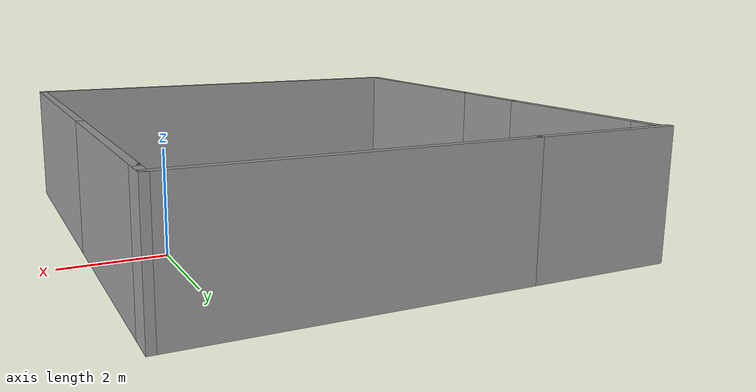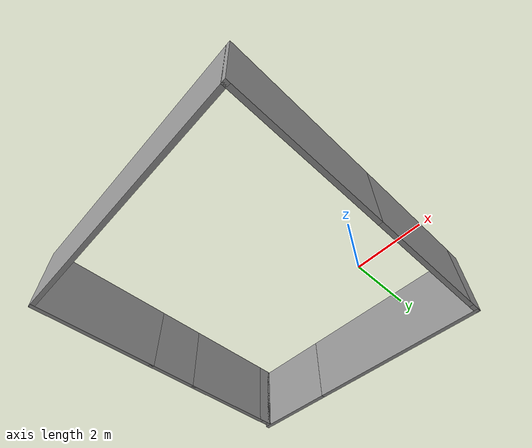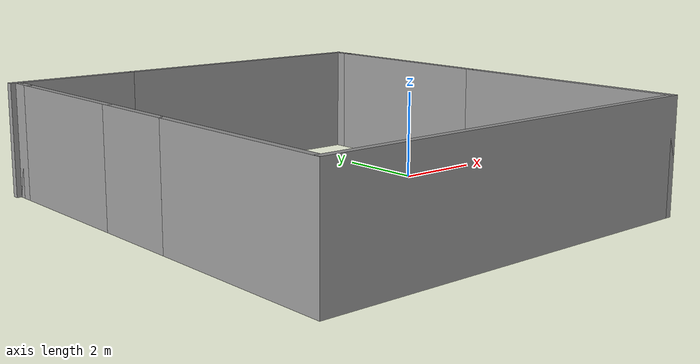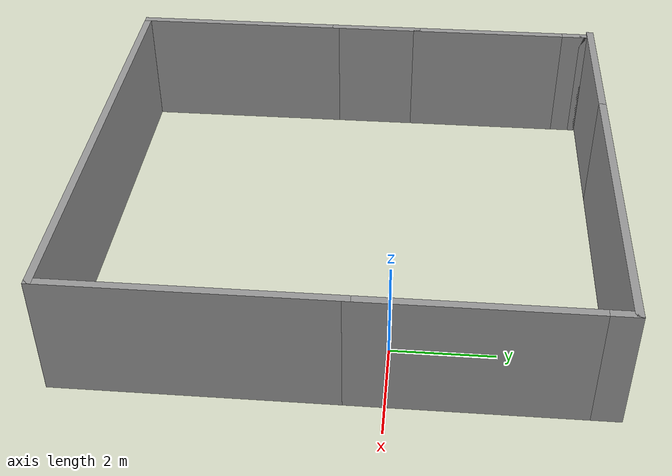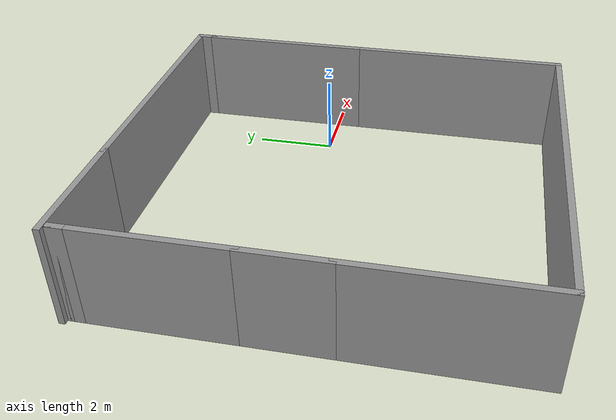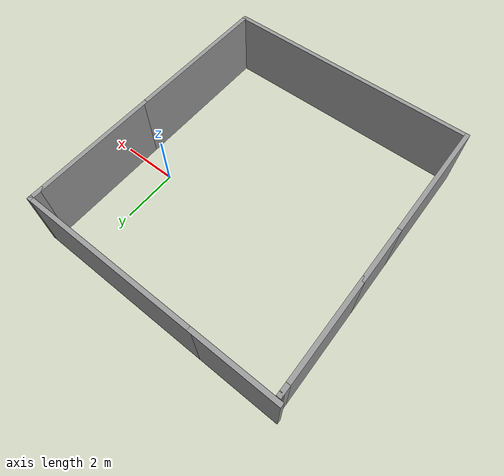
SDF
<?xml version='1.0'?>
<sdf version='1.6'>
  <model name='Walls'>
    <pose frame=''>-3.27461 -0.974878 0 0 -0 0</pose>
    <link name='Wall_106'>
      <collision name='Wall_106_Collision'>
        <geometry>
          <box>
            <size>3 0.15 2.5</size>
          </box>
        </geometry>
        <pose frame=''>0 0 1.25 0 -0 0</pose>
      </collision>
      <visual name='Wall_106_Visual'>
        <pose frame=''>0 0 1.25 0 -0 0</pose>
        <geometry>
          <box>
            <size>3 0.15 2.5</size>
          </box>
        </geometry>
        <material>
          <script>
            <uri>file://media/materials/scripts/gazebo.material</uri>
            <name>Gazebo/Grey</name>
          </script>
          <ambient>1 1 1 1</ambient>
        </material>
      </visual>
      <pose frame=''>-3.18 5.05488 0 0 -0 3.14159</pose>
    </link>
    <link name='Wall_108'>
      <collision name='Wall_108_Collision'>
        <geometry>
          <box>
            <size>2 0.15 2.5</size>
          </box>
        </geometry>
        <pose frame=''>0 0 1.25 0 -0 0</pose>
      </collision>
      <visual name='Wall_108_Visual'>
        <pose frame=''>0 0 1.25 0 -0 0</pose>
        <geometry>
          <box>
            <size>2 0.15 2.5</size>
          </box>
        </geometry>
        <material>
          <script>
            <uri>file://media/materials/scripts/gazebo.material</uri>
            <name>Gazebo/Grey</name>
          </script>
          <ambient>1 1 1 1</ambient>
        </material>
      </visual>
      <pose frame=''>-4.495 0.219878 0 0 -0 1.5708</pose>
    </link>
    <link name='Wall_109'>
      <collision name='Wall_109_Collision'>
        <geometry>
          <box>
            <size>3.5 0.15 2.5</size>
          </box>
        </geometry>
        <pose frame=''>0 0 1.25 0 -0 0</pose>
      </collision>
      <visual name='Wall_109_Visual'>
        <pose frame=''>0 0 1.25 0 -0 0</pose>
        <geometry>
          <box>
            <size>3.5 0.15 2.5</size>
          </box>
        </geometry>
        <material>
          <script>
            <uri>file://media/materials/scripts/gazebo.material</uri>
            <name>Gazebo/Grey</name>
          </script>
          <ambient>1 1 1 1</ambient>
        </material>
      </visual>
      <pose frame=''>-4.495 2.81988 0 0 -0 1.5708</pose>
    </link>
    <link name='Wall_11'>
      <collision name='Wall_11_Collision'>
        <geometry>
          <box>
            <size>0.560488 0.15 2.5</size>
          </box>
        </geometry>
        <pose frame=''>0 0 1.25 0 -0 0</pose>
      </collision>
      <visual name='Wall_11_Visual'>
        <pose frame=''>0 0 1.25 0 -0 0</pose>
        <geometry>
          <box>
            <size>0.560488 0.15 2.5</size>
          </box>
        </geometry>
        <material>
          <script>
            <uri>file://media/materials/scripts/gazebo.material</uri>
            <name>Gazebo/Grey</name>
          </script>
          <ambient>1 1 1 1</ambient>
        </material>
      </visual>
      <pose frame=''>4.605 4.84988 0 0 -0 1.5708</pose>
    </link>
    <link name='Wall_110'>
      <collision name='Wall_110_Collision'>
        <geometry>
          <box>
            <size>0.55 0.15 2.5</size>
          </box>
        </geometry>
        <pose frame=''>0 0 1.25 0 -0 0</pose>
      </collision>
      <visual name='Wall_110_Visual'>
        <pose frame=''>0 0 1.25 0 -0 0</pose>
        <geometry>
          <box>
            <size>0.55 0.15 2.5</size>
          </box>
        </geometry>
        <material>
          <script>
            <uri>file://media/materials/scripts/gazebo.material</uri>
            <name>Gazebo/Grey</name>
          </script>
          <ambient>1 1 1 1</ambient>
        </material>
      </visual>
      <pose frame=''>-4.495 4.69488 0 0 -0 1.5708</pose>
    </link>
    <link name='Wall_12'>
      <collision name='Wall_12_Collision'>
        <geometry>
          <box>
            <size>6.5 0.15 2.5</size>
          </box>
        </geometry>
        <pose frame=''>0 0 1.25 0 -0 0</pose>
      </collision>
      <visual name='Wall_12_Visual'>
        <pose frame=''>0 0 1.25 0 -0 0</pose>
        <geometry>
          <box>
            <size>6.5 0.15 2.5</size>
          </box>
        </geometry>
        <material>
          <script>
            <uri>file://media/materials/scripts/gazebo.material</uri>
            <name>Gazebo/Grey</name>
          </script>
          <ambient>1 1 1 1</ambient>
        </material>
      </visual>
      <pose frame=''>1.42 5.05488 0 0 -0 3.14159</pose>
    </link>
    <link name='Wall_19'>
      <collision name='Wall_19_Collision'>
        <geometry>
          <box>
            <size>0.15 0.15 2.5</size>
          </box>
        </geometry>
        <pose frame=''>0 0 1.25 0 -0 0</pose>
      </collision>
      <visual name='Wall_19_Visual'>
        <pose frame=''>0 0 1.25 0 -0 0</pose>
        <geometry>
          <box>
            <size>0.15 0.15 2.5</size>
          </box>
        </geometry>
        <material>
          <script>
            <uri>file://media/materials/scripts/gazebo.material</uri>
            <name>Gazebo/Grey</name>
          </script>
          <ambient>1 1 1 1</ambient>
        </material>
      </visual>
      <pose frame=''>-4.495 4.89488 0 0 -0 0</pose>
    </link>
    <link name='Wall_2'>
      <collision name='Wall_2_Collision'>
        <geometry>
          <box>
            <size>4.5 0.15 2.5</size>
          </box>
        </geometry>
        <pose frame=''>0 0 1.25 0 -0 0</pose>
      </collision>
      <visual name='Wall_2_Visual'>
        <pose frame=''>0 0 1.25 0 -0 0</pose>
        <geometry>
          <box>
            <size>4.5 0.15 2.5</size>
          </box>
        </geometry>
        <material>
          <script>
            <uri>file://media/materials/scripts/gazebo.material</uri>
            <name>Gazebo/Grey</name>
          </script>
          <ambient>1 1 1 1</ambient>
        </material>
      </visual>
      <pose frame=''>-4.495 -2.88012 0 0 0 -1.5708</pose>
    </link>
    <link name='Wall_3'>
      <collision name='Wall_3_Collision'>
        <geometry>
          <box>
            <size>9.25 0.15 2.5</size>
          </box>
        </geometry>
        <pose frame=''>0 0 1.25 0 -0 0</pose>
      </collision>
      <visual name='Wall_3_Visual'>
        <pose frame=''>0 0 1.25 0 -0 0</pose>
        <geometry>
          <box>
            <size>9.25 0.15 2.5</size>
          </box>
        </geometry>
        <material>
          <script>
            <uri>file://media/materials/scripts/gazebo.material</uri>
            <name>Gazebo/Grey</name>
          </script>
          <ambient>1 1 1 1</ambient>
        </material>
      </visual>
      <pose frame=''>0.055 -5.05512 0 0 -0 0</pose>
    </link>
    <link name='Wall_7'>
      <collision name='Wall_7_Collision'>
        <geometry>
          <box>
            <size>5.5 0.15 2.5</size>
          </box>
        </geometry>
        <pose frame=''>0 0 1.25 0 -0 0</pose>
      </collision>
      <visual name='Wall_7_Visual'>
        <pose frame=''>0 0 1.25 0 -0 0</pose>
        <geometry>
          <box>
            <size>5.5 0.15 2.5</size>
          </box>
        </geometry>
        <material>
          <script>
            <uri>file://media/materials/scripts/gazebo.material</uri>
            <name>Gazebo/Grey</name>
          </script>
          <ambient>1 1 1 1</ambient>
        </material>
      </visual>
      <pose frame=''>4.605 -2.38012 0 0 -0 1.5708</pose>
    </link>
    <link name='Wall_9'>
      <collision name='Wall_9_Collision'>
        <geometry>
          <box>
            <size>4.5 0.15 2.5</size>
          </box>
        </geometry>
        <pose frame=''>0 0 1.25 0 -0 0</pose>
      </collision>
      <visual name='Wall_9_Visual'>
        <pose frame=''>0 0 1.25 0 -0 0</pose>
        <geometry>
          <box>
            <size>4.5 0.15 2.5</size>
          </box>
        </geometry>
        <material>
          <script>
            <uri>file://media/materials/scripts/gazebo.material</uri>
            <name>Gazebo/Grey</name>
          </script>
          <ambient>1 1 1 1</ambient>
        </material>
      </visual>
      <pose frame=''>4.605 2.46988 0 0 -0 1.5708</pose>
    </link>
    <static>1</static>
  </model>
</sdf>
